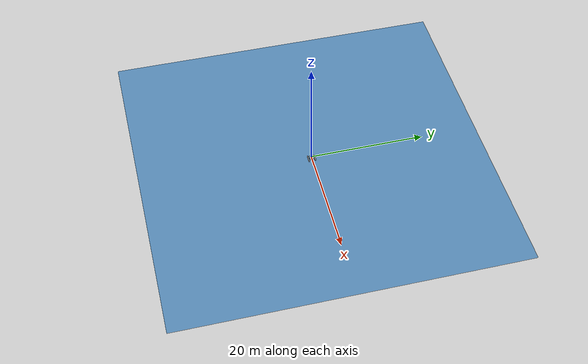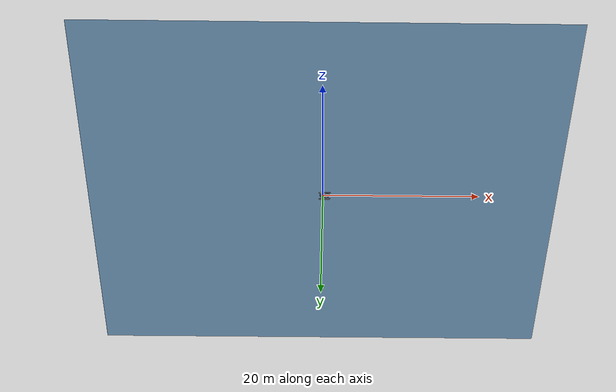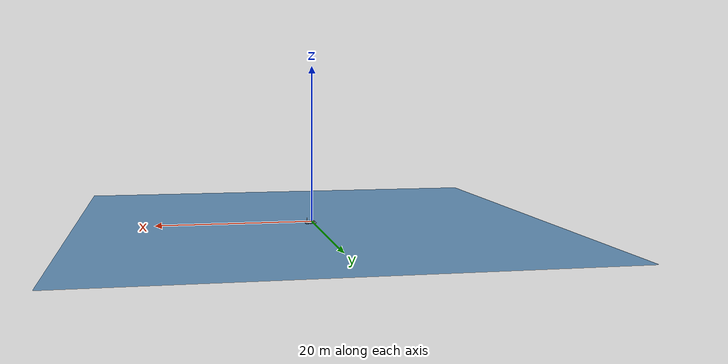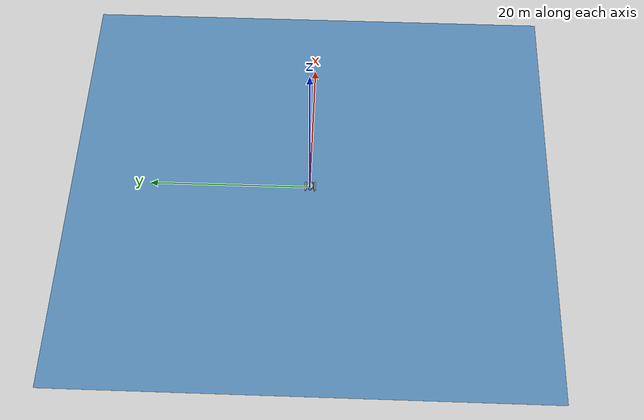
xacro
<?xml version="1.0"?>
<robot xmlns:xacro="http://www.ros.org/wiki/xacro" name="usv">

  <!-- Basic dimensions -->
  <xacro:property name="hull_length" value="1.0"/>
  <xacro:property name="hull_width" value="0.45"/>
  <xacro:property name="hull_height" value="0.20"/>

  <xacro:property name="camera_size" value="0.08"/>

  <!-- Water plane size -->
  <xacro:property name="water_length" value="60.0"/>
  <xacro:property name="water_width" value="60.0"/>
  <xacro:property name="water_thickness" value="0.02"/>

  <!-- Base hull -->
  <link name="base_link">
    <visual>
      <origin xyz="-0.5 0.65 -0.25" rpy="1.5708 0 0.0"/>
      <geometry>
        <mesh filename="package://usv_sim/meshes/boat_hull.STL" scale="1.25 1.25 1.25"/>
      </geometry>
      <material name="gray">
        <color rgba="0.6 0.6 0.6 1.0"/>
      </material>
    </visual>

    <collision>
      <origin xyz="0 0 0.0" rpy="0 0 0"/>
      <geometry>
        <box size="${hull_length} ${hull_width} ${hull_height}"/>
      </geometry>
    </collision>

    <inertial>
      <origin xyz="0 0 0.0" rpy="0 0 0"/>
      <mass value="15.0"/>
      <inertia
        ixx="1.0"
        ixy="0.0"
        ixz="0.0"
        iyy="1.0"
        iyz="0.0"
        izz="1.0"/>
    </inertial>
  </link>

  <!-- Camera frame -->
  <link name="camera_link">
    <visual>
      <origin xyz="0 0 0" rpy="0 0 0"/>
      <geometry>
        <box size="${camera_size} ${camera_size} ${camera_size}"/>
      </geometry>
      <material name="gray">
        <color rgba="0.4 0.4 0.4 1.0"/>
      </material>
    </visual>
  </link>

  <joint name="camera_joint" type="fixed">
    <parent link="base_link"/>
    <child link="camera_link"/>
    <origin xyz="0.30 0.0 0.14" rpy="0 0 0"/>
  </joint>

  <!-- Water plane -->
  <link name="water_plane">
    <visual>
      <origin xyz="0 0 0" rpy="0 0 0"/>
      <geometry>
        <box size="${water_length} ${water_width} ${water_thickness}"/>
      </geometry>
      <material name="water_blue">
        <color rgba="0.0 0.35 0.65 0.55"/>
      </material>
    </visual>
  </link>

  <joint name="water_joint" type="fixed">
    <parent link="base_link"/>
    <child link="water_plane"/>
    <origin xyz="0 0 -0.12" rpy="0 0 0"/>
  </joint>

</robot>
